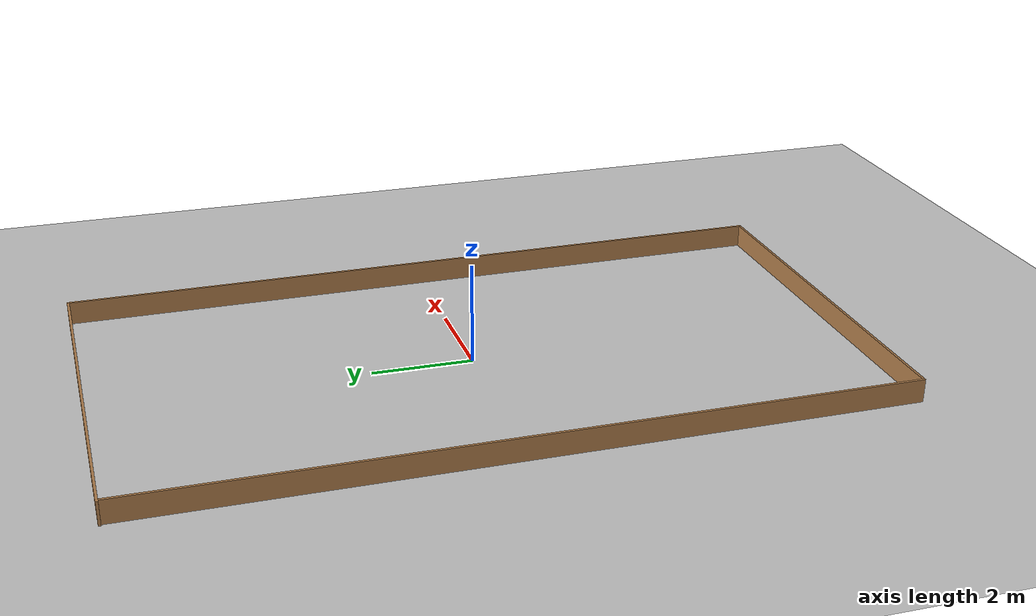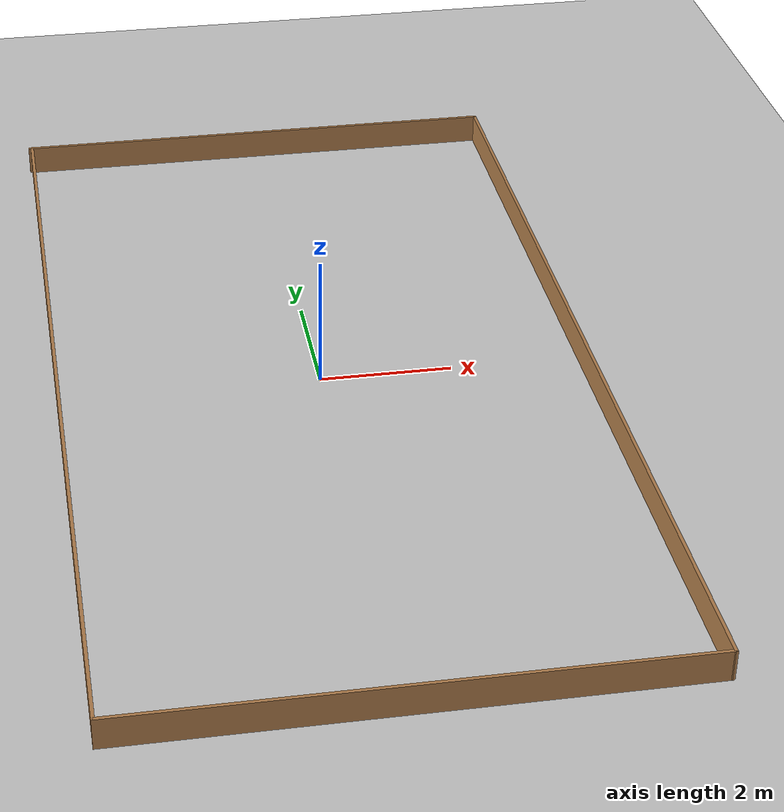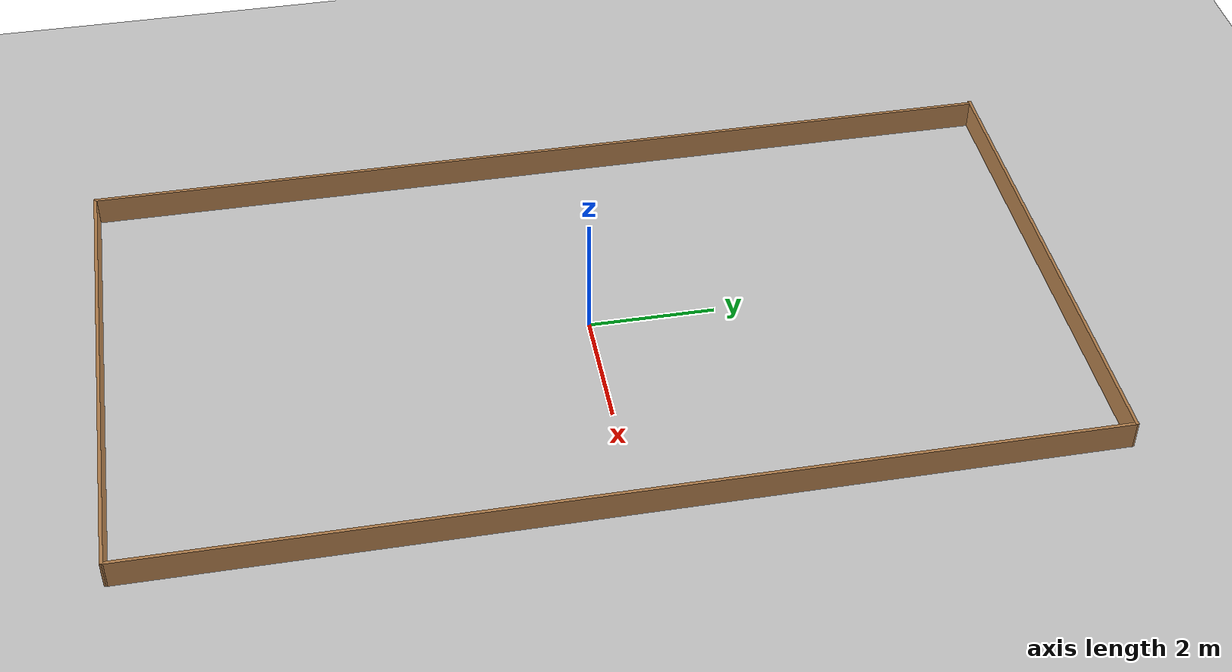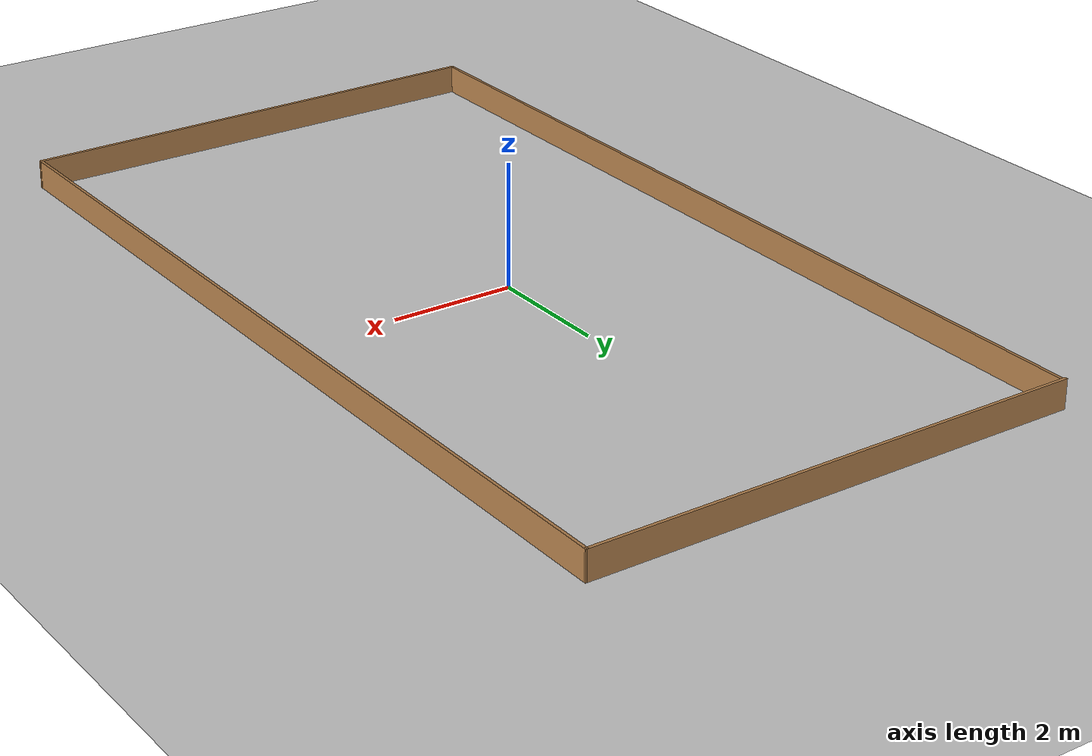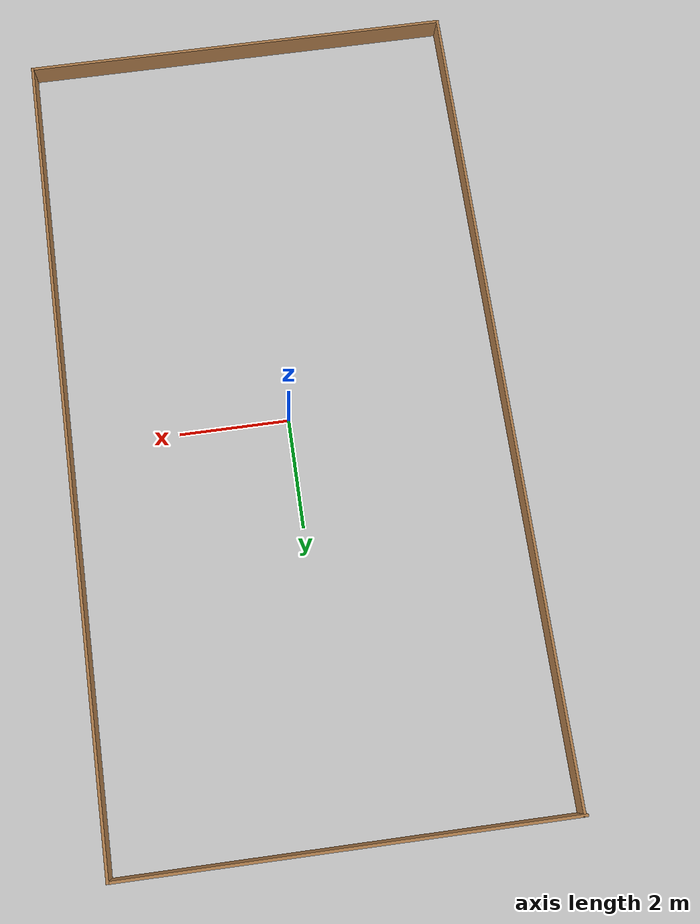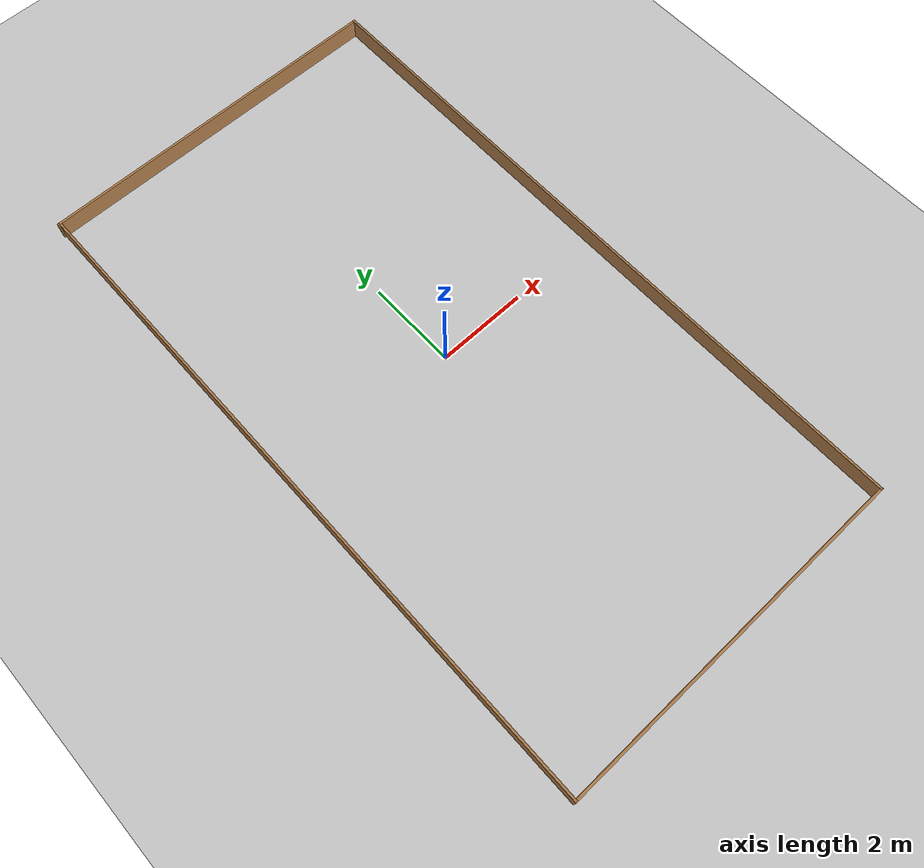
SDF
<sdf version="1.10">
 <world name="default">
  <gravity>0 0 -9.8000000000000007</gravity>
  <magnetic_field>6.0000000000000002e-06 2.3e-05 -4.1999999999999998e-05</magnetic_field>
  <atmosphere type="adiabatic"/>
  <physics type="ode">
   <max_step_size>0.001</max_step_size>
   <real_time_factor>1</real_time_factor>
   <real_time_update_rate>1000</real_time_update_rate>
  </physics>
  <plugin filename="gz-sim-physics-system" name="gz::sim::systems::Physics"/>
  <plugin filename="gz-sim-user-commands-system" name="gz::sim::systems::UserCommands"/>
  <plugin filename="gz-sim-scene-broadcaster-system" name="gz::sim::systems::SceneBroadcaster"/>
  <plugin filename="gz-sim-sensors-system" name="gz::sim::systems::Sensors">
   <render_engine>ogre2</render_engine>
  </plugin>
  <plugin filename="gz-sim-contact-system" name="gz::sim::systems::Contact"/>
  <scene>
   <ambient>0.400000006 0.400000006 0.400000006 1</ambient>
   <background>0.699999988 0.699999988 0.699999988 1</background>
   <shadows>true</shadows>
  </scene>
  <audio><device>default</device></audio>
  <spherical_coordinates>
   <surface_model>EARTH_WGS84</surface_model>
   <latitude_deg>0</latitude_deg>
   <longitude_deg>0</longitude_deg>
   <elevation>0</elevation>
   <heading_deg>0</heading_deg>
  </spherical_coordinates>
  <model name="ground_plane">
   <static>true</static>
   <link name="link">
    <collision name="collision">
     <geometry><plane><normal>0 0 1</normal><size>100 100</size></plane></geometry>
     <surface><friction><ode><mu>100</mu><mu2>50</mu2></ode></friction></surface>
    </collision>
    <visual name="visual">
     <cast_shadows>false</cast_shadows>
     <geometry><plane><normal>0 0 1</normal><size>100 100</size></plane></geometry>
     <material>
      <script><uri>file://media/materials/scripts/gazebo.material</uri><name>Gazebo/Grey</name></script>
     </material>
    </visual>
    <inertial>
     <mass>1</mass>
     <inertia><ixx>1</ixx><ixy>0</ixy><ixz>0</ixz><iyy>1</iyy><iyz>0</iyz><izz>1</izz></inertia>
    </inertial>
   </link>
  </model>
  <model name="basketball_arena">
   <pose>0.018412999999999999 -0.052254000000000002 0 0 0 0</pose>
   <link name="Wall_10">
    <collision name="Wall_10_Collision">
     <geometry><box><size>15 0.050000000000000003 0.80000000000000004</size></box></geometry>
     <pose>0 0 0.050000000000000003 0 0 0</pose>
    </collision>
    <visual name="Wall_10_Visual">
     <pose>0 0 0.050000000000000003 0 0 0</pose>
     <geometry><box><size>15 0.050000000000000003 0.80000000000000004</size></box></geometry>
     <material>
      <script><uri>file://media/materials/scripts/gazebo.material</uri><name>Gazebo/Wood</name></script>
      <ambient>1 1 1 1</ambient>
     </material>
     <meta><layer>0</layer></meta>
    </visual>
    <pose>3.9749699999999999 0 0 0 0 1.57315</pose>
    <inertial>
     <mass>1</mass>
     <inertia><ixx>1</ixx><ixy>0</ixy><ixz>0</ixz><iyy>1</iyy><iyz>0</iyz><izz>1</izz></inertia>
    </inertial>
   </link>
   <link name="Wall_11">
    <collision name="Wall_11_Collision">
     <geometry><box><size>8 0.050000000000000003 0.80000000000000004</size></box></geometry>
     <pose>0 0 0.050000000000000003 0 0 0</pose>
    </collision>
    <visual name="Wall_11_Visual">
     <pose>0 0 0.050000000000000003 0 0 0</pose>
     <geometry><box><size>8 0.050000000000000003 0.80000000000000004</size></box></geometry>
     <material>
      <script><uri>file://media/materials/scripts/gazebo.material</uri><name>Gazebo/Wood</name></script>
      <ambient>1 1 1 1</ambient>
     </material>
     <meta><layer>0</layer></meta>
    </visual>
    <pose>-0.017618999999992918 7.4750000000000032 0 0 0 3.141589999999999</pose>
    <inertial>
     <mass>1</mass>
     <inertia><ixx>1</ixx><ixy>0</ixy><ixz>0</ixz><iyy>1</iyy><iyz>0</iyz><izz>1</izz></inertia>
    </inertial>
   </link>
   <link name="Wall_8">
    <collision name="Wall_8_Collision">
     <geometry><box><size>14.9999 0.050000000000000003 0.80000000000000004</size></box></geometry>
     <pose>0 0 0.050000000000000003 0 0 0</pose>
    </collision>
    <visual name="Wall_8_Visual">
     <pose>0 0 0.050000000000000003 0 0 0</pose>
     <geometry><box><size>14.9999 0.050000000000000003 0.80000000000000004</size></box></geometry>
     <material>
      <script><uri>file://media/materials/scripts/gazebo.material</uri><name>Gazebo/Wood</name></script>
      <ambient>1 1 1 1</ambient>
     </material>
     <meta><layer>0</layer></meta>
    </visual>
    <pose>-3.9574399999999996 6.4045990733063718e-15 0 0 0 -1.5708000000000018</pose>
    <inertial>
     <mass>1</mass>
     <inertia><ixx>1</ixx><ixy>0</ixy><ixz>0</ixz><iyy>1</iyy><iyz>0</iyz><izz>1</izz></inertia>
    </inertial>
   </link>
   <link name="Wall_9">
    <collision name="Wall_9_Collision">
     <geometry><box><size>8 0.050000000000000003 0.80000000000000004</size></box></geometry>
     <pose>0 0 0.050000000000000003 0 0 0</pose>
    </collision>
    <visual name="Wall_9_Visual">
     <pose>0 0 0.050000000000000003 0 0 0</pose>
     <geometry><box><size>8 0.050000000000000003 0.80000000000000004</size></box></geometry>
     <material>
      <script><uri>file://media/materials/scripts/gazebo.material</uri><name>Gazebo/Wood</name></script>
      <ambient>1 1 1 1</ambient>
     </material>
     <meta><layer>0</layer></meta>
    </visual>
    <pose>0.017559999999993799 -7.4749999999999961 0 0 0 -8.8817841970012523e-16</pose>
    <inertial>
     <mass>1</mass>
     <inertia><ixx>1</ixx><ixy>0</ixy><ixz>0</ixz><iyy>1</iyy><iyz>0</iyz><izz>1</izz></inertia>
    </inertial>
   </link>
   <static>true</static>
  </model>
  <light name="sun" type="directional">
   <pose>0 0 10 0 0 0</pose>
   <intensity>1</intensity>
   <direction>-0.5 0.10000000000000001 -0.90000000000000002</direction>
   <diffuse>0.800000012 0.800000012 0.800000012 1</diffuse>
   <specular>0.200000003 0.200000003 0.200000003 1</specular>
   <attenuation>
    <range>1000</range>
    <linear>0.01</linear>
    <constant>0.90000000000000002</constant>
    <quadratic>0.001</quadratic>
   </attenuation>
   <spot><inner_angle>0</inner_angle><outer_angle>0</outer_angle><falloff>0</falloff></spot>
  </light>
 </world>
</sdf>
